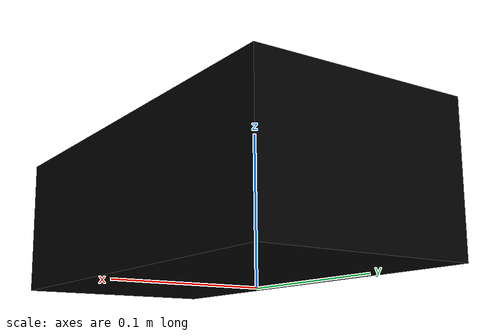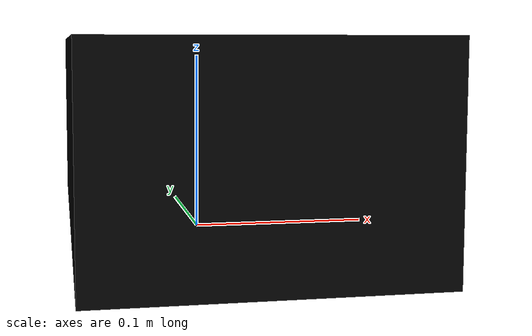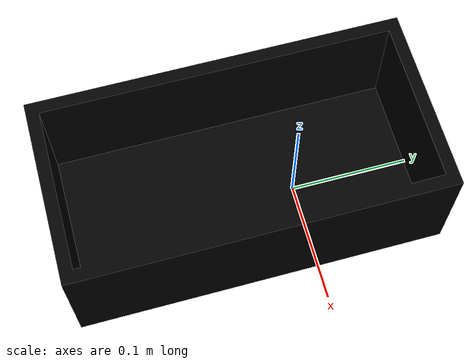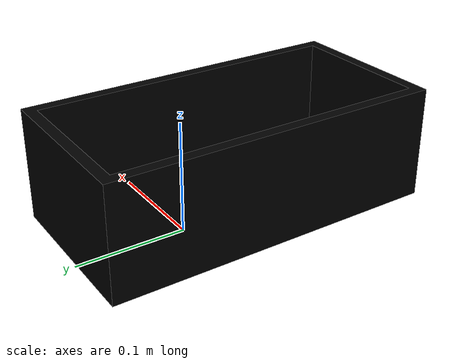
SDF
<?xml version="1.0" ?>
<sdf version="1.5">
  <model name="drop_zone">
    <link name="base">
      <inertial>
        <mass>100</mass>
      </inertial>
      <visual name="dropzoneName">
        <pose>0 0 0 0 0 0</pose>
        <geometry>
          <mesh>
            <uri>model://dropzone_naughts/meshes/Dropzone.dae</uri>
          </mesh>
        </geometry>
        <material> <!-- LED material -->
          <ambient>0 0 0 1</ambient>
          <diffuse>0 0 0 1</diffuse>
          <specular>0 0 0 0</specular>
          <emissive>0 0 0 1</emissive>
        </material> <!-- End LED material -->
      </visual>
      <collision name="col_box_on_ground">
        <pose>0 0 0.01 0 0 0</pose>
        <geometry>
          <box>
            <size>1 1 1</size>
          </box>
        </geometry>
      </collision>

    </link>
  </model>
</sdf>
